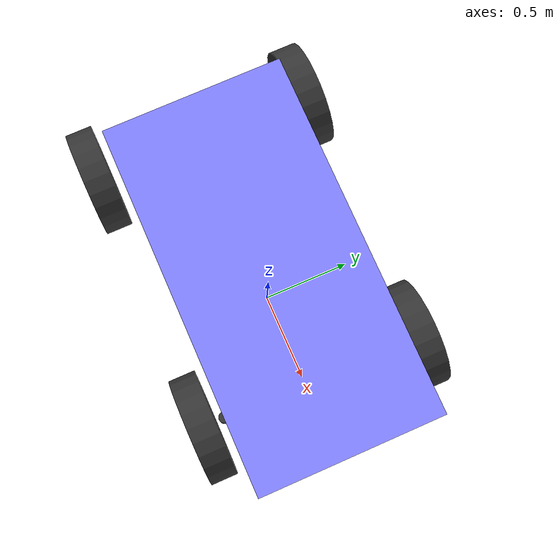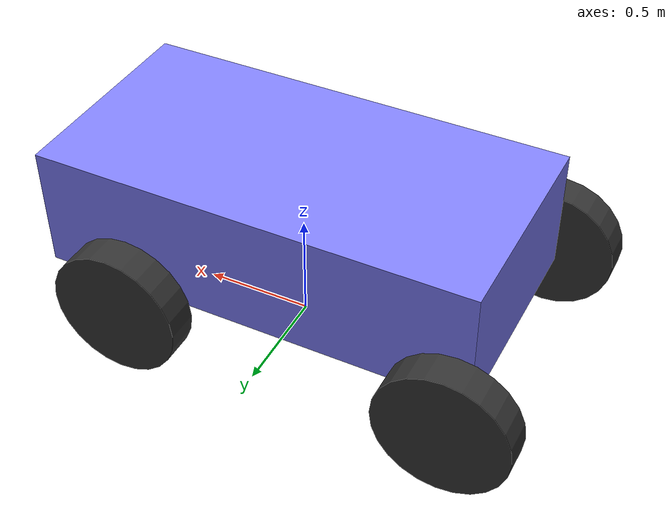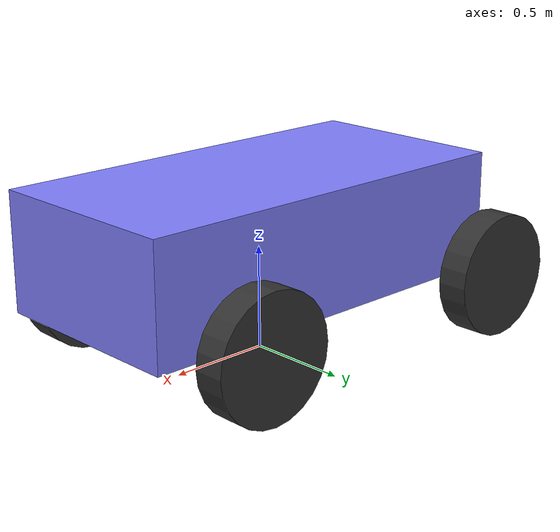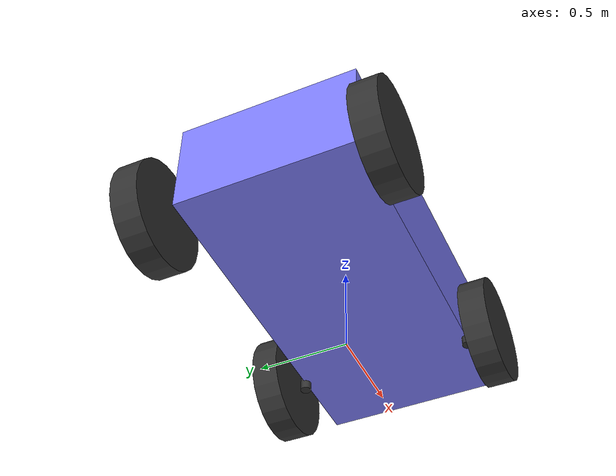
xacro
<?xml version="1.0"?>
<robot name="ackermann" xmlns:xacro="http://www.ros.org/wiki/xacro">

  <!-- Propiedades generales -->
  <xacro:property name="wheel_radius" value="0.3"/>
  <xacro:property name="base_elevation" value="0.3"/>
  <xacro:property name="chassis_length" value="2.01142"/>
  <xacro:property name="chassis_width" value="1"/>
  <xacro:property name="chassis_height" value="0.568726"/>
  <xacro:arg name = "base_color" default="1.0 0.0 0.0 1.0" />
  <xacro:arg name="ns"    default="ackermann"/>

  <!-- Materiales -->
  <material name="gray">
    <color rgba="0.5 0.5 1.0 1.0"/>
  </material>

  <material name="black">
    <color rgba="0.2 0.2 0.2 1.0"/>
  </material>

  <link name="$(arg ns)/base_footprint"/>

  <joint name="$(arg ns)/base_footprint_joint" type="fixed">
    <parent link="$(arg ns)/base_footprint"/>
    <child link="$(arg ns)/chassis"/>
    <origin xyz="0 0 ${base_elevation}" rpy="0 0 0"/>
  </joint>

  <!-- Chasis -->
  <link name="$(arg ns)/chassis">
    <visual>
      <origin xyz="0 0 ${chassis_height/2}" rpy="0 0 0"/>
      <geometry>
        <box size="${chassis_length} ${chassis_width} ${chassis_height}"/>
      </geometry>
      <material name="gray"/>
    </visual>
    <collision>
      <origin xyz="0 0 ${chassis_height/2}" rpy="0 0 0"/>
      <geometry>
        <box size="${chassis_length} ${chassis_width} ${chassis_height}"/>
      </geometry>
    </collision>
    <inertial>
      <origin xyz="0 0 0"/>
      <mass value="1.14395"/>
      <inertia ixx="0.126164" ixy="0.0" ixz="0.0" iyy="0.416519" iyz="0.0" izz="0.481014"/>
    </inertial>
  </link>

  <!-- Ruedas traseras -->
  <link name="$(arg ns)/rear_left_wheel">
    <visual>
      <origin xyz="0 0 0" rpy="-1.5707 0 0"/>
      <geometry>
          <cylinder length="0.15" radius="${wheel_radius}"/>
      </geometry>
      <material name="black"/>
    </visual>
      <collision>
        <origin xyz="0 0 0" rpy="-1.5707 0 0"/>
        <geometry>
          <cylinder length="0.15" radius="${wheel_radius}"/>
        </geometry>
      </collision>
      <inertial>
        <origin xyz="0 0 0"/>
        <mass value="2"/>
        <inertia ixx="0.145833" ixy="0" ixz="0" iyy="0.145833" iyz="0" izz="0.125"/>
      </inertial>
  </link>

  <joint name="$(arg ns)/rear_left_wheel_joint" type="continuous">
    <parent link="$(arg ns)/chassis"/>
    <child link="$(arg ns)/rear_left_wheel"/>
    <origin xyz="-0.957138 0.625029 ${wheel_radius-base_elevation}" rpy="0 0 0"/>
    <axis xyz="0 1 0"/>
  </joint>

  <link name="$(arg ns)/rear_right_wheel">
    <visual>
      <origin xyz="0 0 0" rpy="-1.5707 0 0"/>
      <geometry>
        <cylinder length="0.15" radius="${wheel_radius}"/>
      </geometry>
      <material name="black"/>
    </visual>
    <collision>
      <origin xyz="0 0 0" rpy="-1.5707 0 0"/>
      <geometry>
        <cylinder length="0.15" radius="${wheel_radius}"/>
      </geometry>
    </collision>
    <inertial>
      <origin xyz="0 0 0"/>
      <mass value="2"/>
      <inertia ixx="0.145833" ixy="0" ixz="0" iyy="0.145833" iyz="0" izz="0.125"/>
    </inertial>
  </link>

  <joint name="$(arg ns)/rear_right_wheel_joint" type="continuous">
    <parent link="$(arg ns)/chassis"/>
    <child link="$(arg ns)/rear_right_wheel"/>
    <origin xyz="-0.957138 -0.625029 ${wheel_radius-base_elevation}" rpy="0 0 0"/>
    <axis xyz="0 1 0"/>
  </joint>

  <!-- Eslabones de dirección delanteros -->
  <link name="$(arg ns)/front_left_wheel_steering">
    <visual>
      <origin xyz="0 0 0" rpy="0 0 0"/>
      <geometry>
        <cylinder length="0.1" radius="0.03"/>
      </geometry>
      <material name="black"/>
    </visual>
    <inertial>
      <origin xyz="0 0 0"/>
      <mass value="0.5"/>
      <inertia ixx="0.0153" ixy="0.0" ixz="0.0" iyy="0.025" iyz="0.0" izz="0.0153"/>
    </inertial>
  </link>

  <joint name="$(arg ns)/front_left_wheel_steering_joint" type="revolute">
      <parent link="$(arg ns)/chassis"/>
      <child link="$(arg ns)/front_left_wheel_steering"/>
      <origin xyz="0.554283 0.5 ${wheel_radius-base_elevation}" rpy="0 0 0"/>
      <axis xyz="0 0 1"/>
      <limit lower="-0.8" upper="0.8" effort="25" velocity="1.0"/>
  </joint>

  <link name="$(arg ns)/front_right_wheel_steering">
    <visual>
      <origin xyz="0 0 0" rpy="0 0 0"/>
      <geometry>
        <cylinder length="0.1" radius="0.03"/>
      </geometry>
      <material name="black"/>
    </visual>
    <inertial>
      <origin xyz="0 0 0"/>
      <mass value="0.5"/>
      <inertia ixx="0.0153" ixy="0.0" ixz="0.0" iyy="0.025" iyz="0.0" izz="0.0153"/>
    </inertial>
  </link>

  <joint name="$(arg ns)/front_right_wheel_steering_joint" type="revolute">
      <parent link="$(arg ns)/chassis"/>
      <child link="$(arg ns)/front_right_wheel_steering"/>
      <origin xyz="0.554283 -0.5 ${wheel_radius-base_elevation}" rpy="0 0 0"/>
      <axis xyz="0 0 1"/>
      <limit lower="-0.8" upper="0.8" effort="25" velocity="1.0"/>
  </joint>

  <!-- Ruedas delanteras -->
  <link name="$(arg ns)/front_left_wheel">
    <visual>
      <origin xyz="0 0 0" rpy="-1.5707 0 0"/>
      <geometry>
        <cylinder length="0.15" radius="${wheel_radius}"/>
      </geometry>
      <material name="black"/>
    </visual>
    <collision>
      <origin xyz="0 0 0" rpy="-1.5707 0 0"/>
      <geometry>
        <cylinder length="0.15" radius="${wheel_radius}"/>
      </geometry>
    </collision>
    <inertial>
      <origin xyz="0 0 0"/>
      <mass value="2"/>
      <inertia ixx="0.145833" ixy="0" ixz="0" iyy="0.145833" iyz="0" izz="0.125"/>
    </inertial>
  </link>

  <joint name="$(arg ns)/front_left_wheel_joint" type="continuous">
    <parent link="$(arg ns)/front_left_wheel_steering"/>
    <child link="$(arg ns)/front_left_wheel"/>
    <origin xyz="0.0 0.125029 0.0" rpy="0 0 0"/>
    <axis xyz="0 1 0"/>
  </joint>

  <link name="$(arg ns)/front_right_wheel">
    <visual>
      <origin xyz="0 0 0" rpy="-1.5707 0 0"/>
      <geometry>
        <cylinder length="0.15" radius="${wheel_radius}"/>
      </geometry>
      <material name="black"/>
    </visual>
    <collision>
      <origin xyz="0 0 0" rpy="-1.5707 0 0"/>
      <geometry>
        <cylinder length="0.15" radius="${wheel_radius}"/>
      </geometry>
    </collision>
    <inertial>
      <origin xyz="0 0 0"/>
      <mass value="2"/>
      <inertia ixx="0.145833" ixy="0" ixz="0" iyy="0.145833" iyz="0" izz="0.125"/>
    </inertial>
  </link>

  <joint name="$(arg ns)/front_right_wheel_joint" type="continuous">
    <parent link="$(arg ns)/front_right_wheel_steering"/>
    <child link="$(arg ns)/front_right_wheel"/>
    <origin xyz="0.0 -0.125029 0.0" rpy="0 0 0"/>
    <axis xyz="0 1 0"/>
  </joint>

   <!-- ************************ SENSORS DEFINITION ***************************** -->
  <!-- IMU -->
  <gazebo reference="$(arg ns)/chassis">
    <sensor name="imu_sensor" type="imu">
      <ignition_frame_id>$(arg ns)/chassis</ignition_frame_id>
      <always_on>1</always_on>
      <update_rate>50</update_rate>
      <visualize>false</visualize>
      <topic>$(arg ns)/imu</topic>
      <imu>
        <enable_orientation>0</enable_orientation>
        <angular_velocity>
          <x>
            <noise type="gaussian">
              <mean>0</mean>
              <stddev>0.009</stddev>
              <bias_mean>0.00075</bias_mean>
              <bias_stddev>0.005</bias_stddev>
              <dynamic_bias_stddev>0.00002</dynamic_bias_stddev>
              <dynamic_bias_correlation_time>400.0</dynamic_bias_correlation_time>
              <precision>0.00025</precision>
            </noise>
          </x>
          <y>
            <noise type="gaussian">
              <mean>0</mean>
              <stddev>0.009</stddev>
              <bias_mean>0.00075</bias_mean>
              <bias_stddev>0.005</bias_stddev>
              <dynamic_bias_stddev>0.00002</dynamic_bias_stddev>
              <dynamic_bias_correlation_time>400.0</dynamic_bias_correlation_time>
              <precision>0.00025</precision>
            </noise>
          </y>
          <z>
            <noise type="gaussian">
              <mean>0</mean>
              <stddev>0.009</stddev>
              <bias_mean>0.00075</bias_mean>
              <bias_stddev>0.005</bias_stddev>
              <dynamic_bias_stddev>0.00002</dynamic_bias_stddev>
              <dynamic_bias_correlation_time>400.0</dynamic_bias_correlation_time>
              <precision>0.00025</precision>
            </noise>
          </z>
        </angular_velocity>
        <linear_acceleration>
          <x>
            <noise type="gaussian">
              <mean>0</mean>
              <stddev>0.021</stddev>
              <bias_mean>0.05</bias_mean>
              <bias_stddev>0.0075</bias_stddev>
              <dynamic_bias_stddev>0.000375</dynamic_bias_stddev>
              <dynamic_bias_correlation_time>175.0</dynamic_bias_correlation_time>
              <precision>0.005</precision>
            </noise>
          </x>
          <y>
            <noise type="gaussian">
              <mean>0</mean>
              <stddev>0.021</stddev>
              <bias_mean>0.05</bias_mean>
              <bias_stddev>0.0075</bias_stddev>
              <dynamic_bias_stddev>0.000375</dynamic_bias_stddev>
              <dynamic_bias_correlation_time>175.0</dynamic_bias_correlation_time>
              <precision>0.005</precision>
            </noise>
          </y>
          <z>
            <noise type="gaussian">
              <mean>0</mean>
              <stddev>0.021</stddev>
              <bias_mean>0.05</bias_mean>
              <bias_stddev>0.0075</bias_stddev>
              <dynamic_bias_stddev>0.000375</dynamic_bias_stddev>
              <dynamic_bias_correlation_time>175.0</dynamic_bias_correlation_time>
              <precision>0.005</precision>
            </noise>
          </z>
        </linear_acceleration>
      </imu>
    </sensor>
  </gazebo>

  <gazebo>
    <plugin
      filename="ignition-gazebo-ackermann-steering-system"
      name="gz::sim::systems::AckermannSteering">
      <left_joint>$(arg ns)/rear_left_wheel_joint</left_joint>
      <right_joint>$(arg ns)/rear_right_wheel_joint</right_joint>
      <left_steering_joint>$(arg ns)/front_left_wheel_steering_joint</left_steering_joint>
      <right_steering_joint>$(arg ns)/front_right_wheel_steering_joint</right_steering_joint>
      <kingpin_width>1.0</kingpin_width>
      <steering_limit>2.0</steering_limit>
      <wheel_base>1.511421</wheel_base>
      <wheel_separation>1.25</wheel_separation>
      <wheel_radius>0.3</wheel_radius>
      <min_velocity>-10</min_velocity>
      <max_velocity>10</max_velocity>
      <min_acceleration>-10</min_acceleration>
      <max_acceleration>10</max_acceleration>
      <odom_frame>$(arg ns)/odom</odom_frame>           <!-- ← Agregar -->
      <robot_base_frame>base_footprint</robot_base_frame>  <!-- ← Agregar -->
      <publish_odom_tf>true</publish_odom_tf >
    </plugin>

    <plugin
        filename="gz-sim-joint-state-publisher-system"
        name = "gz::sim::systems::JointStatePublisher">
    </plugin>
  </gazebo>

</robot>
